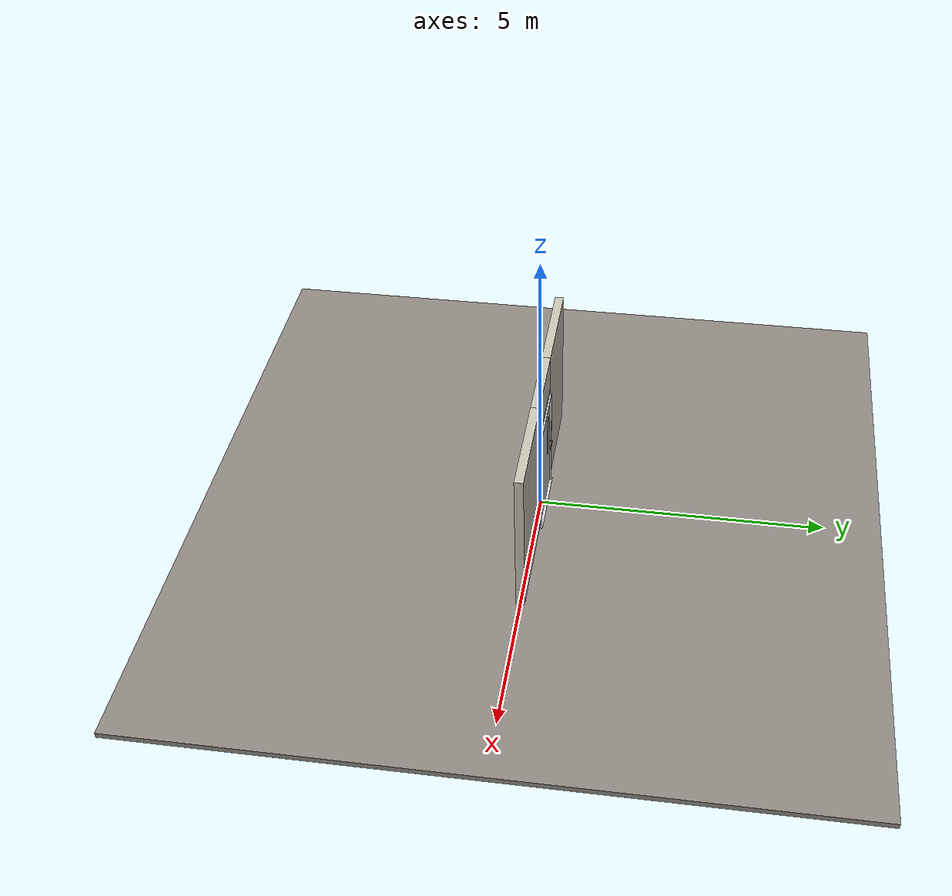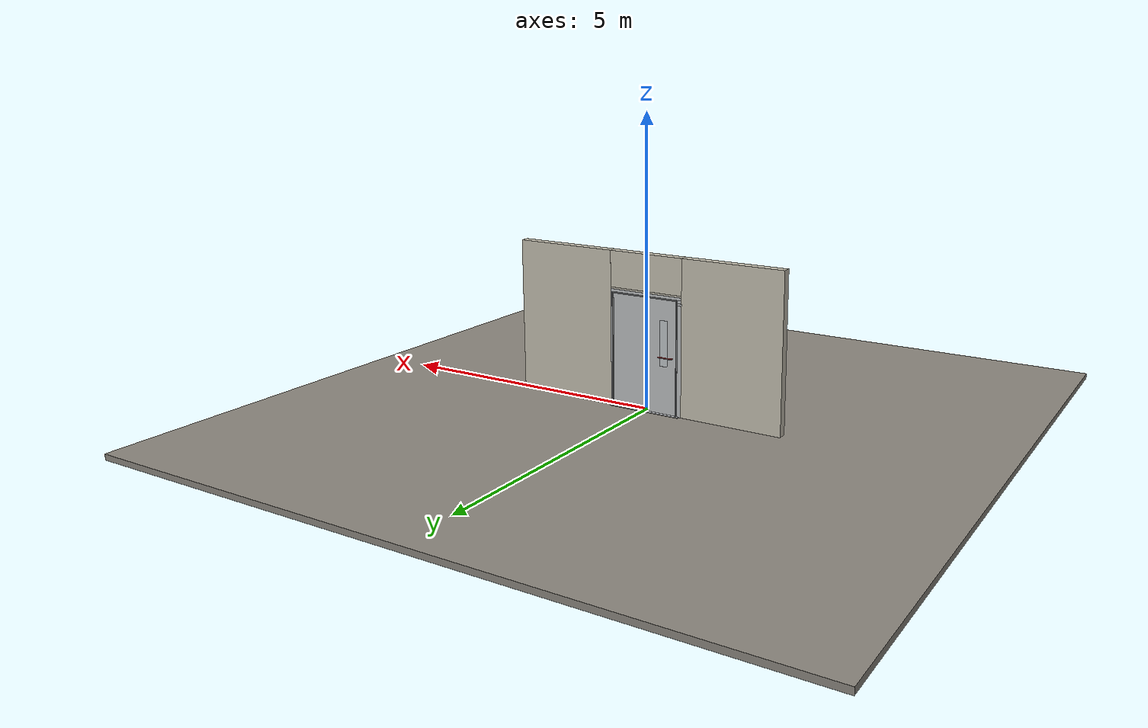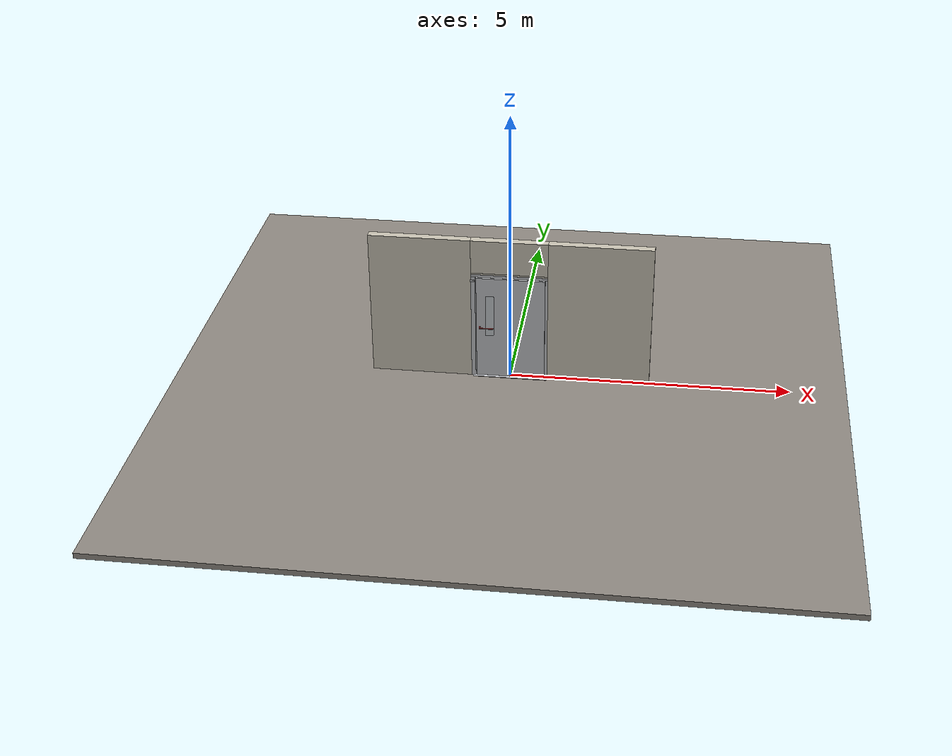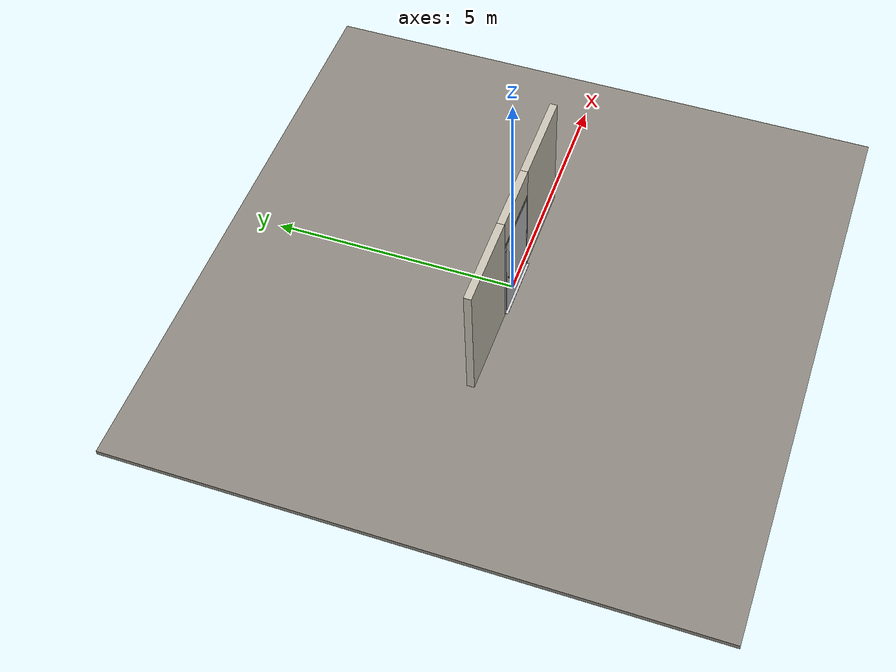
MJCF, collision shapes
<?xml version="1.0" ?>
<mujoco model="db0937_cold_storage_minimal">
  <compiler angle="radian" meshdir="../../hardware" texturedir="../../textures" autolimits="true" inertiafromgeom="false"/>
  <option timestep="0.002" integrator="implicitfast" cone="elliptic" impratio="10" noslip_iterations="3">
    <flag multiccd="enable"/>
  </option>
  <size memory="16M"/>
  <default>
    <geom condim="4" solref="0.005 1" solimp="0.95 0.99 0.001"/>
    <joint solreflimit="0.005 1" solimplimit="0.95 0.99 0.001"/>
    <tendon solreflimit="0.005 1"/>
    <equality solref="0.002 1"/>
  </default>
  <visual>
    <headlight ambient="0.4 0.4 0.4" diffuse="0.7 0.7 0.7" specular="0.2 0.2 0.2"/>
    <quality shadowsize="4096"/>
    <map znear="0.01" zfar="60"/>
  </visual>
  <asset>
    <mesh name="lever_40740b93f7" file="lever_40740b93f7.obj"/>
    <material name="mat_floor" rgba="0.55 0.53 0.5 1" specular="0.2" shininess="0.15" reflectance="0"/>
    <material name="mat_wall" rgba="0.78 0.76 0.7 1" specular="0.2" shininess="0.1" reflectance="0"/>
    <material name="mat_hinge" rgba="0.55 0.56 0.58 1" specular="0.8" shininess="0.55" reflectance="0.4"/>
    <material name="mat_leaf" rgba="0.75 0.76 0.77 1" specular="0.8" shininess="0.65" reflectance="0.4"/>
    <material name="mat_glass" rgba="0.85 0.92 0.95 0.25" specular="0.2" shininess="0.95" reflectance="0.1"/>
    <material name="mat_op_chrome" rgba="0.9 0.9 0.92 1" specular="0.8" shininess="0.9" reflectance="0.4"/>
    <material name="mat_trim" rgba="0.85 0.66 0.3 1" specular="0.8" shininess="0.75" reflectance="0.4"/>
    <material name="mat_bolt" rgba="0.75 0.76 0.77 1" specular="0.8" shininess="0.65" reflectance="0.4"/>
    <material name="mat_frame" rgba="0.75 0.76 0.77 1" specular="0.8" shininess="0.65" reflectance="0.4"/>
    <material name="mat_seal" rgba="0.1 0.1 0.1 1" specular="0.2" shininess="0.1" reflectance="0"/>
    <material name="mat_threshold" rgba="0.8 0.81 0.83 1" specular="0.8" shininess="0.6" reflectance="0.4"/>
    <material name="mat_closer" rgba="0.22 0.17 0.13 1" specular="0.8" shininess="0.6" reflectance="0.4"/>
    <material name="mat_kick" rgba="0.75 0.76 0.77 1" specular="0.8" shininess="0.65" reflectance="0.4"/>
    <material name="mat_placard" rgba="0.95 0.75 0.05 1" specular="0.2" shininess="0.5" reflectance="0"/>
    <texture name="skybox" type="skybox" builtin="gradient" rgb1="0.6 0.7 0.85" rgb2="0.9 0.92 0.95" width="256" height="256"/>
  </asset>
  <worldbody>
    <light name="sun" pos="1.5 -2.5 4" dir="-0.3 0.5 -0.8" directional="true" diffuse="0.8 0.8 0.8" specular="0.3 0.3 0.3" castshadow="true"/>
    <light name="fill" pos="-1.5 2.5 3" dir="0.3 -0.5 -0.7" directional="true" diffuse="0.35 0.35 0.4" castshadow="false"/>
    <camera name="robot_view" pos="0 -2.5 1.7" xyaxes="1 0 0 0 0.26963 0.962964" fovy="52"/>
    <camera name="far_view" pos="0 2.5 1.7" xyaxes="-1 0 0 0 -0.26963 0.962964" fovy="52"/>
    <camera name="iso" pos="-1.9 -2.1 2.1" xyaxes="0.741536 -0.670913 0 0.242917 0.268487 0.932151" fovy="46"/>
    <camera name="detail_handle" pos="-0.158 -0.93 1.28" xyaxes="0.97561 0.219512 0 -0.070934 0.315262 0.94635" fovy="38"/>
    <geom name="floor" type="box" size="6 6 0.05" pos="0 0 -0.05" material="mat_floor" group="0" contype="1" conaffinity="1" friction="0.8 0.005 0.0001" density="2400"/>
    <geom name="wall_left" type="box" size="0.9025 0.075 1.35" pos="-1.5975 0 1.35" material="mat_wall" group="0" contype="1" conaffinity="1" friction="0.6 0.005 0.0001" density="800"/>
    <geom name="wall_right" type="box" size="0.9175 0.075 1.35" pos="1.5825 0 1.35" material="mat_wall" group="0" contype="1" conaffinity="1" friction="0.6 0.005 0.0001" density="800"/>
    <geom name="wall_header" type="box" size="0.68 0.075 0.3125" pos="-0.015 0 2.3875" material="mat_wall" group="0" contype="1" conaffinity="1" friction="0.6 0.005 0.0001" density="800"/>
    <geom name="jamb_hinge" type="box" size="0.0225 0.075 1" pos="0.6425 0 1" material="mat_frame" group="0" contype="1" conaffinity="1" friction="0.6 0.005 0.0001" density="300"/>
    <geom name="strike_1926_wall_n" type="box" size="0.0375 0.03375 0.019" pos="-0.6575 0.04125 1.9264" material="mat_frame" group="0" contype="1" conaffinity="1" friction="0.6 0.005 0.0001" density="300"/>
    <geom name="strike_1926_wall_p" type="box" size="0.0375 0.008 0.019" pos="-0.6575 -0.0155 1.9264" material="mat_frame" group="0" contype="1" conaffinity="1" friction="0.6 0.005 0.0001" density="300"/>
    <geom name="strike_1926_ramp" type="box" size="0.0375 0.035921 0.019" pos="-0.660822 -0.055596 1.9264" quat="0.99881 0 0 -0.048776" material="mat_frame" group="0" contype="1" conaffinity="1" friction="0.12 0.005 0.0001" density="300"/>
    <geom name="strike_1926_ramp_n" type="box" size="0.0375 0.035921 0.019" pos="-0.660822 0.043596 1.9264" quat="0.99881 0 0 0.048776" material="mat_frame" group="0" contype="1" conaffinity="1" friction="0.12 0.005 0.0001" density="300"/>
    <geom name="strike_1926_back" type="box" size="0.0325 0.0075 0.019" pos="-0.6625 0 1.9264" material="mat_frame" group="0" contype="1" conaffinity="1" friction="0.6 0.005 0.0001" density="300"/>
    <geom name="jamb_strike_0" type="box" size="0.0375 0.075 0.9537" pos="-0.6575 0 0.9537" material="mat_frame" group="0" contype="1" conaffinity="1" friction="0.6 0.005 0.0001" density="300"/>
    <geom name="jamb_strike_1" type="box" size="0.0375 0.075 0.0273" pos="-0.6575 0 1.9727" material="mat_frame" group="0" contype="1" conaffinity="1" friction="0.6 0.005 0.0001" density="300"/>
    <geom name="jamb_head" type="box" size="0.68 0.075 0.0225" pos="-0.015 0 2.0225" material="mat_frame" group="0" contype="1" conaffinity="1" friction="0.6 0.005 0.0001" density="300"/>
    <geom name="head_stud" type="box" size="0.68 0.075 0.015" pos="-0.015 0 2.06" material="mat_wall" group="0" contype="1" conaffinity="1" friction="0.6 0.005 0.0001" density="500"/>
    <geom name="stop_hinge" type="box" size="0.0055 0.016 1" pos="0.6145 0.0915 1" material="mat_frame" group="0" contype="1" conaffinity="1" friction="0.6 0.005 0.0001" density="300"/>
    <geom name="stop_strike" type="box" size="0.0055 0.016 1" pos="-0.6145 0.0915 1" material="mat_frame" group="0" contype="1" conaffinity="1" friction="0.6 0.005 0.0001" density="300"/>
    <geom name="stop_head" type="box" size="0.62 0.016 0.0055" pos="0 0.0915 1.9945" material="mat_frame" group="0" contype="1" conaffinity="1" friction="0.6 0.005 0.0001" density="300"/>
    <geom name="threshold" type="box" size="0.665 0.125 0.004" pos="0 0 0.004" material="mat_threshold" group="0" contype="1" conaffinity="1" friction="0.6 0.005 0.0001" density="2700"/>
    <site name="approach_point" pos="0 -1.5 0" quat="1 0 0 0" size="0.05" rgba="0.2 0.9 0.2 0.5" group="4"/>
    <site name="goal_point" pos="0 1.5 0" quat="1 0 0 0" size="0.05" rgba="0.2 0.9 0.2 0.5" group="4"/>
    <site name="door_plane_center" pos="0 0 1" quat="1 0 0 0" size="0.02" rgba="0.2 0.9 0.2 0.5" group="4"/>
    <body name="leaf_riser" pos="0.62 0 0">
      <inertial pos="0 0 0" mass="0.01" quat="1 0 0 0" diaginertia="0.000001 0.000001 0.000001"/>
      <joint name="leaf_rise" type="slide" axis="0 0 1" limited="true" range="0 0.0264" damping="1" armature="0.5"/>
      <body name="leaf" pos="0 0 0">
        <inertial pos="-0.613109 0 0.994269" mass="74.111207" quat="0.499968 0.499968 -0.500032 0.500032" diaginertia="9.331550843 23.966415705 33.020047778"/>
        <joint name="leaf_hinge" type="hinge" axis="0 0 1" pos="-0.003 -0.082 0" limited="true" range="0 1.745329" solreflimit="0.02 1" damping="12.792177" frictionloss="4.677607" stiffness="21.358593" springref="-1.732324" armature="0.02"/>
        <geom name="leaf_slab" type="box" size="0.61 0.075 0.9822" pos="-0.613 0 0.9942" material="mat_leaf" group="0" contype="1" conaffinity="1" friction="0.35 0.005 0.0001" density="1"/>
        <geom name="leaf_glass_0" type="box" size="0.075 0.0758 0.39288" pos="-0.9838 0 1.229928" material="mat_glass" group="1" contype="0" conaffinity="0" density="1"/>
        <site name="leaf_edge_mid" pos="-1.223 0 0.9822" quat="1 0 0 0" size="0.02" rgba="0.2 0.9 0.2 0.5" group="4"/>
        <body name="leaf_handle" pos="-1.158 0 1">
          <inertial pos="0.047801 0 0" mass="2.884841" quat="0 0.707107 0.707107 0" diaginertia="0.01820894 0.037747558 0.053988164"/>
          <joint name="leaf_handle_hinge" type="hinge" axis="0 1 0" limited="true" range="0 0.5" damping="0.58994" frictionloss="0.07" stiffness="2.5" springref="-0.96" armature="0.01"/>
          <geom name="leaf_handle_lever_n" type="mesh" mesh="lever_40740b93f7" pos="0 -0.075 0" quat="0 0 -0.707107 0.707107" material="mat_op_chrome" group="1" contype="0" conaffinity="0" density="3000"/>
          <geom name="leaf_handle_lever_col_n" type="capsule" size="0.0095 0.1155" pos="0.125 -0.13 0" quat="0.707107 0 0.707107 0" material="mat_op_chrome" group="3" contype="1" conaffinity="1" rgba="0.8 0.3 0.3 0.25" friction="0.7 0.01 0.0001" density="3000"/>
          <geom name="leaf_handle_hub_col_n" type="cylinder" size="0.012 0.022" pos="0 -0.105 0" quat="0.707107 -0.707107 0 0" material="mat_op_chrome" group="3" contype="1" conaffinity="1" rgba="0.8 0.3 0.3 0.25" friction="0.6 0.005 0.0001" density="3000"/>
          <geom name="leaf_handle_lever_p" type="mesh" mesh="lever_40740b93f7" pos="0 0.075 0" quat="0 0 0.707107 0.707107" material="mat_op_chrome" group="1" contype="0" conaffinity="0" density="3000"/>
          <geom name="leaf_handle_lever_col_p" type="capsule" size="0.0095 0.1155" pos="0.125 0.13 0" quat="0.707107 0 0.707107 0" material="mat_op_chrome" group="3" contype="1" conaffinity="1" rgba="0.8 0.3 0.3 0.25" friction="0.7 0.01 0.0001" density="3000"/>
          <geom name="leaf_handle_hub_col_p" type="cylinder" size="0.012 0.022" pos="0 0.105 0" quat="0.707107 -0.707107 0 0" material="mat_op_chrome" group="3" contype="1" conaffinity="1" rgba="0.8 0.3 0.3 0.25" friction="0.6 0.005 0.0001" density="3000"/>
          <site name="leaf_handle_grip_n" pos="0.2 -0.13 0" quat="1 0 0 0" size="0.012" rgba="0.2 0.9 0.2 0.5" group="4"/>
          <site name="leaf_handle_grip_p" pos="0.2 0.13 0" quat="1 0 0 0" size="0.012" rgba="0.2 0.9 0.2 0.5" group="4"/>
        </body>
      </body>
    </body>
  </worldbody>
  <equality>
    <joint name="leaf_rise_couple" joint1="leaf_rise" joint2="leaf_hinge" polycoef="0 0.007639 0 0 0" active="true"/>
  </equality>
  <sensor>
    <jointpos name="leaf_hinge_pos" joint="leaf_hinge"/>
    <jointvel name="leaf_hinge_vel" joint="leaf_hinge"/>
    <jointpos name="leaf_handle_hinge_pos" joint="leaf_handle_hinge"/>
    <jointvel name="leaf_handle_hinge_vel" joint="leaf_handle_hinge"/>
  </sensor>
</mujoco>
